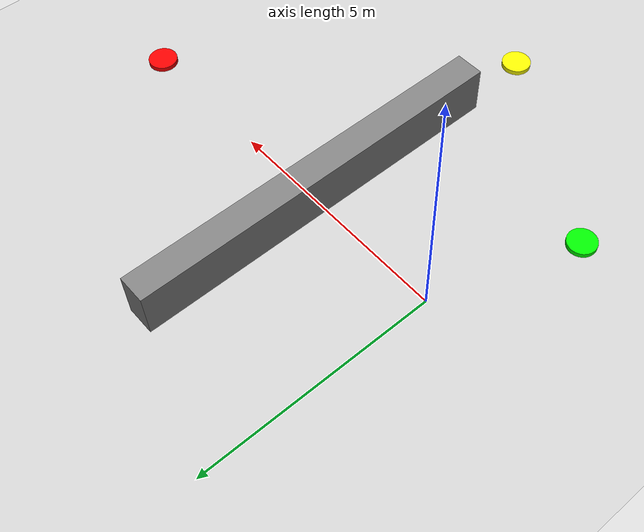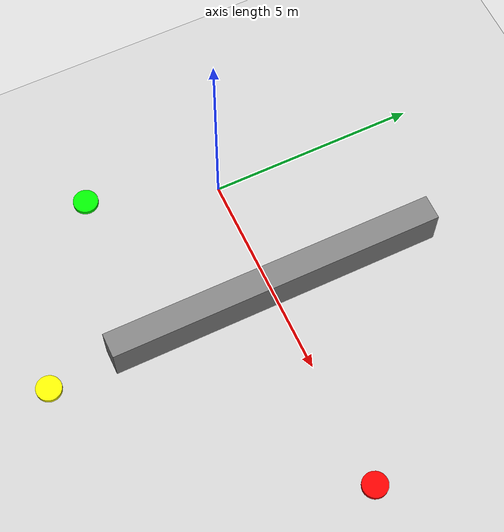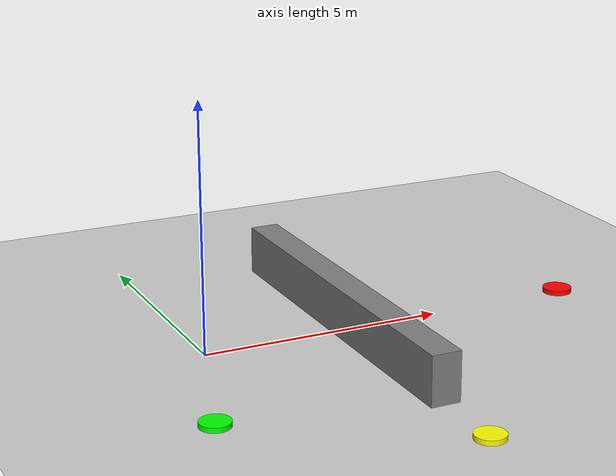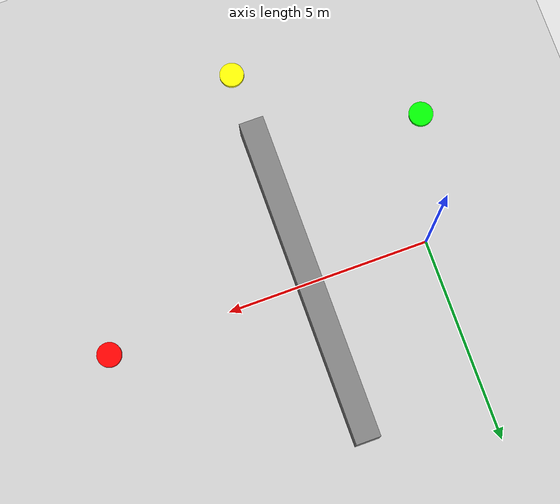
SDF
<?xml version="1.0"?>
<sdf version="1.6">
  <world name="default">

    <plugin name="gazebo_ros_state" filename="libgazebo_ros_state.so"/>

    <include>
      <uri>model://ground_plane</uri>
    </include>

    <include>
      <uri>model://sun</uri>
    </include>

    <scene>
      <shadows>false</shadows>
    </scene>

    <gui fullscreen='0'>
      <camera name='user_camera'>
        <pose frame=''>-8 -8 8 0 0.5 0.78</pose>
        <view_controller>orbit</view_controller>
        <projection_type>perspective</projection_type>
      </camera>
    </gui>

    <physics type="ode">
      <real_time_update_rate>250</real_time_update_rate>
      <max_step_size>0.004</max_step_size>
      <real_time_factor>1</real_time_factor>
      <ode>
        <solver>
          <type>quick</type>
          <iters>10</iters>
          <sor>1.3</sor>
        </solver>
        <constraints>
          <cfm>0</cfm>
          <erp>0.2</erp>
          <contact_max_correcting_vel>100</contact_max_correcting_vel>
          <contact_surface_layer>0.001</contact_surface_layer>
        </constraints>
      </ode>
    </physics>

    <!-- Long N-S wall at x=3, spanning y=-4..4 (half_x=4.0 along world-y after
         the 90 deg yaw, half_y=0.3 thin along world-x) -->
    <model name="wall_1">
      <static>true</static>
      <pose>3 0 0.5 0 0 1.5708</pose>
      <link name="link">
        <visual name="visual">
          <geometry><box><size>8.0 0.6 1</size></box></geometry>
          <material><ambient>0.5 0.5 0.5 1</ambient><diffuse>0.5 0.5 0.5 1</diffuse></material>
        </visual>
        <collision name="collision">
          <geometry><box><size>8.0 0.6 1</size></box></geometry>
        </collision>
      </link>
    </model>

    <!-- Visual-only markers for the three test targets (no collision -
         targets are reached, not searched for, in this experiment) -->
    <model name="target_rover_easy">
      <static>true</static>
      <pose>-1 -3 0.05 0 0 0</pose>
      <link name="link">
        <visual name="visual">
          <geometry><cylinder><radius>0.3</radius><length>0.1</length></cylinder></geometry>
          <material><ambient>0 1 0 1</ambient><diffuse>0 1 0 1</diffuse></material>
        </visual>
      </link>
    </model>

    <model name="target_drone_easy">
      <static>true</static>
      <pose>8 0 0.05 0 0 0</pose>
      <link name="link">
        <visual name="visual">
          <geometry><cylinder><radius>0.3</radius><length>0.1</length></cylinder></geometry>
          <material><ambient>1 0 0 1</ambient><diffuse>1 0 0 1</diffuse></material>
        </visual>
      </link>
    </model>

    <model name="target_ambiguous">
      <static>true</static>
      <pose>3 -5.5 0.05 0 0 0</pose>
      <link name="link">
        <visual name="visual">
          <geometry><cylinder><radius>0.3</radius><length>0.1</length></cylinder></geometry>
          <material><ambient>1 1 0 1</ambient><diffuse>1 1 0 1</diffuse></material>
        </visual>
      </link>
    </model>

  </world>
</sdf>
